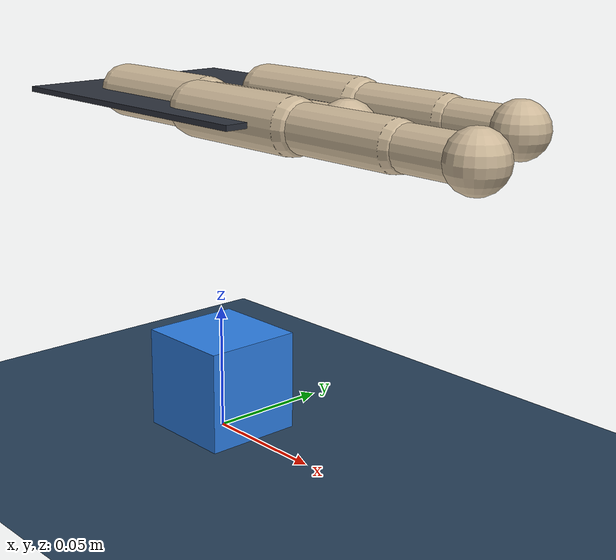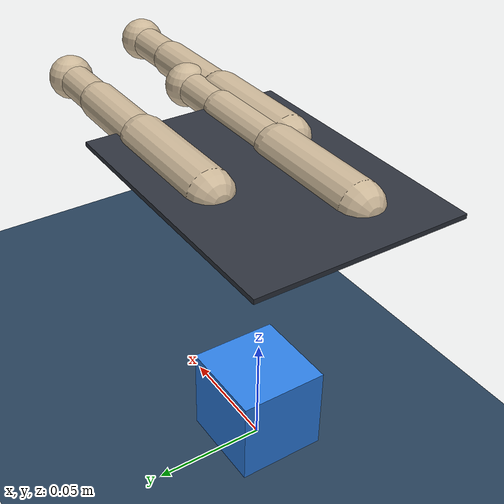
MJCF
<mujoco model="scene_cube_tn0d0041p0d0101p0d0010_ip0d0016n0d0071p0d0013_mp0d0213p0d0036p0d0052">
  <compiler angle="radian" autolimits="true" />
  <option timestep="0.002" gravity="0 0 -9.81" integrator="implicitfast" />
  <visual>
    <headlight ambient=".4 .4 .4" diffuse=".8 .8 .8" specular="0.1 0.1 0.1" />
    <map znear=".01" />
    <quality shadowsize="2048" />
    <global elevation="-15" />
  </visual>
  <default>
    <geom friction="1.8 0.15 0.01" solref="0.006 1" solimp="0.97 0.995 0.0005" />
    <motor ctrlrange="-1 1" ctrllimited="true" />
    <default class="pose">
      <joint damping="2.0" armature="0.01" />
      <position kp="4000" kv="100" forcerange="-1000 1000" />
    </default>
    <default class="ctrl">
      <joint damping="0.5" armature="0.001" />
      <position kp="30" kv="0.5" gear="1" forcerange="-10 10" ctrlrange="-1 1" />
    </default>
  </default>
  <asset>
    <texture type="skybox" builtin="gradient" rgb1="0.3 0.5 0.7" rgb2="0 0 0" width="512" height="3072" />
    <texture type="2d" name="groundplane" builtin="checker" mark="edge" rgb1="0.2 0.3 0.4" rgb2="0.1 0.2 0.3" markrgb="0.8 0.8 0.8" width="300" height="300" />
    <material name="groundplane" texture="groundplane" texuniform="true" texrepeat="5 5" reflectance="0.2" />
    <texture name="grid" type="2d" builtin="checker" rgb1="0.15 0.15 0.15" rgb2="0.25 0.25 0.25" width="256" height="256" />
    <material name="table_mat" texture="grid" texrepeat="3 3" reflectance="0.2" />
    <material name="palm_mat" rgba="0.18 0.2 0.24 1" />
    <material name="finger_mat" rgba="0.8 0.72 0.6 1" />
    <material name="object_mat" rgba="0.18 0.5 0.9 1" />
  </asset>
  <worldbody>
    <light pos="0 0 1.5" dir="0 0 -1" directional="true" diffuse=".6 .6 .6" specular=".2 .2 .2" />
    <light pos="0.5 0.5 1.0" dir="-1 -1 -1" directional="true" diffuse=".4 .4 .4" specular=".1 .1 .1" />
    <geom name="floor" type="plane" size="1.5 1.5 0.1" material="groundplane" />
    <body name="cube" pos="0.000000 0.000000 0.020000">
      <freejoint />
      <geom type="box" size="0.020000 0.020000 0.020000" density="500" material="object_mat" friction="2.4 0.2 0.02" />
    </body>
    <body gravcomp="1" name="palm_pose" pos="0 0 0.134">
      <joint class="pose" name="palm_px" type="slide" axis="1 0 0" range="-0.20 0.20" />
      <joint class="pose" name="palm_py" type="slide" axis="0 1 0" range="-0.20 0.20" />
      <joint class="pose" name="palm_pz" type="slide" axis="0 0 1" range="-0.15 0.35" />
      <joint class="pose" name="palm_rx" type="hinge" axis="1 0 0" range="-1.57 1.57" />
      <joint class="pose" name="palm_ry" type="hinge" axis="0 1 0" range="-1.57 1.57" />
      <joint class="pose" name="palm_rz" type="hinge" axis="0 0 1" range="-3.14 3.14" />
      <geom type="box" size="0.06 0.045 0.001" material="palm_mat" />
      <body name="thumb_mount" pos="-0.034084 -0.017857 0">
        <inertial pos="0 0 0" mass="0.001" diaginertia="1e-6 1e-6 1e-6" />
        <body name="thumb_yaw_frame">
          <inertial pos="0 0 0" mass="0.001" diaginertia="1e-6 1e-6 1e-6" />
          <joint class="ctrl" name="thumb_yaw" type="hinge" axis="1 0 0" range="-1.1 1.1" />
          <body name="thumb_mcp_frame">
            <joint class="ctrl" name="thumb_mcp" type="hinge" axis="0 1 0" range="0 3.14" />
            <geom type="capsule" fromto="0 0 0 0.05 0 0" size="0.010" material="finger_mat" />
            <body name="thumb_len_frame" pos="0.05099 0 0">
              <geom type="capsule" fromto="0 0 0 0.04 0 0" size="0.0085" material="finger_mat" />
              <body name="thumb_pip_frame" pos="0.04 0 0">
                <joint class="ctrl" name="thumb_pip" type="hinge" axis="0 1 0" range="-1.2 0.5" />
                <geom type="capsule" fromto="0 0 0 0.03 0 0" size="0.0075" material="finger_mat" />
                <body name="thumb_tip" pos="0.03 0 0">
                  <geom type="sphere" size="0.010" material="finger_mat" friction="2.4 0.2 0.02" />
                  <geom type="sphere" pos="0 0.004 0" size="0.005" material="finger_mat" friction="2.4 0.2 0.02" />
                  <geom type="sphere" pos="0 -0.004 0" size="0.005" material="finger_mat" friction="2.4 0.2 0.02" />
                </body>
              </body>
            </body>
          </body>
        </body>
      </body>
      <body name="index_mount" pos="0.001599 0.022881 0">
        <inertial pos="0 0 0" mass="0.001" diaginertia="1e-6 1e-6 1e-6" />
        <body name="index_yaw_frame">
          <inertial pos="0 0 0" mass="0.001" diaginertia="1e-6 1e-6 1e-6" />
          <joint class="ctrl" name="index_yaw" type="hinge" axis="1 0 0" range="-1.1 1.1" />
          <body name="index_mcp_frame">
            <joint class="ctrl" name="index_mcp" type="hinge" axis="0 1 0" range="0 2.5" />
            <geom type="capsule" fromto="0 0 0 0.05 0 0" size="0.010" material="finger_mat" />
            <body name="index_len_frame" pos="0.051332 0 0">
              <geom type="capsule" fromto="0 0 0 0.04 0 0" size="0.0085" material="finger_mat" />
              <body name="index_pip_frame" pos="0.04 0 0">
                <joint class="ctrl" name="index_pip" type="hinge" axis="0 1 0" range="-1.2 1.57" />
                <geom type="capsule" fromto="0 0 0 0.03 0 0" size="0.0075" material="finger_mat" />
                <body name="index_tip" pos="0.03 0 0">
                  <geom type="sphere" size="0.010" material="finger_mat" friction="2.4 0.2 0.02" />
                  <geom type="sphere" pos="0 0.004 0" size="0.005" material="finger_mat" friction="2.4 0.2 0.02" />
                  <geom type="sphere" pos="0 -0.004 0" size="0.005" material="finger_mat" friction="2.4 0.2 0.02" />
                </body>
              </body>
            </body>
          </body>
        </body>
      </body>
      <body name="middle_mount" pos="0.021306 -0.026421 0">
        <inertial pos="0 0 0" mass="0.001" diaginertia="1e-6 1e-6 1e-6" />
        <body name="middle_yaw_frame">
          <inertial pos="0 0 0" mass="0.001" diaginertia="1e-6 1e-6 1e-6" />
          <joint class="ctrl" name="middle_yaw" type="hinge" axis="1 0 0" range="-1.1 1.1" />
          <body name="middle_mcp_frame">
            <joint class="ctrl" name="middle_mcp" type="hinge" axis="0 1 0" range="0 2.5" />
            <geom type="capsule" fromto="0 0 0 0.05 0 0" size="0.010" material="finger_mat" />
            <body name="middle_len_frame" pos="0.055187 0 0">
              <geom type="capsule" fromto="0 0 0 0.04 0 0" size="0.0085" material="finger_mat" />
              <body name="middle_pip_frame" pos="0.04 0 0">
                <joint class="ctrl" name="middle_pip" type="hinge" axis="0 1 0" range="-1.2 1.57" />
                <geom type="capsule" fromto="0 0 0 0.03 0 0" size="0.0075" material="finger_mat" />
                <body name="middle_tip" pos="0.03 0 0">
                  <geom type="sphere" size="0.010" material="finger_mat" friction="2.4 0.2 0.02" />
                  <geom type="sphere" pos="0 0.004 0" size="0.005" material="finger_mat" friction="2.4 0.2 0.02" />
                  <geom type="sphere" pos="0 -0.004 0" size="0.005" material="finger_mat" friction="2.4 0.2 0.02" />
                </body>
              </body>
            </body>
          </body>
        </body>
      </body>
    </body>
  </worldbody>
  <actuator>
    <position class="pose" name="a_palm_px" joint="palm_px" ctrlrange="-0.20 0.20" />
    <position class="pose" name="a_palm_py" joint="palm_py" ctrlrange="-0.20 0.20" />
    <position class="pose" name="a_palm_pz" joint="palm_pz" ctrlrange="-0.15 0.35" />
    <position class="pose" name="a_palm_rx" joint="palm_rx" ctrlrange="-1.57 1.57" />
    <position class="pose" name="a_palm_ry" joint="palm_ry" ctrlrange="-1.57 1.57" />
    <position class="pose" name="a_palm_rz" joint="palm_rz" ctrlrange="-3.14 3.14" />
    <position class="ctrl" name="a_thumb_yaw" joint="thumb_yaw" ctrlrange="-1.1 1.1" />
    <position class="ctrl" name="a_thumb_mcp" joint="thumb_mcp" ctrlrange="0 3.14" />
    <position class="ctrl" name="a_thumb_pip" joint="thumb_pip" ctrlrange="-1.2 0.5" />
    <position class="ctrl" name="a_index_yaw" joint="index_yaw" ctrlrange="-1.1 1.1" />
    <position class="ctrl" name="a_index_mcp" joint="index_mcp" ctrlrange="0 2.5" />
    <position class="ctrl" name="a_index_pip" joint="index_pip" ctrlrange="-1.2 1.57" />
    <position class="ctrl" name="a_middle_yaw" joint="middle_yaw" ctrlrange="-1.1 1.1" />
    <position class="ctrl" name="a_middle_mcp" joint="middle_mcp" ctrlrange="0 2.5" />
    <position class="ctrl" name="a_middle_pip" joint="middle_pip" ctrlrange="-1.2 1.57" />
  </actuator>
  <keyframe>
    <key name="open" qpos="&#10;        0 0 0.02 1 0 0 0 0.02 0 0 0 0 0 0 2 -0.707 0 1.25 1 0 1.25 1&#10;      " ctrl="&#10;        0.02 0 0 0 0 0 0 2 -0.707 0 1.25 1 0 1.25 1&#10;      " />
    <key name="foundational" qpos="&#10;        0.01359506611 -0.00706712798 0.02308682168 0.739953845 -0.06814240118 -0.03155361948 0.6684529075 0.02052335863 0.0007667033741 0.0003961458054 0.000115430294 -5.407399963e-05 -2.346123019e-05 -0.1481537601 1.531299552 -0.9469628806 -0.02542961636 1.560524256 0.6738988866 0.3894840175 1.458304248 0.8853232441&#10;      " ctrl="&#10;        0.02 0 0 0 0 0 0.1439691919 1.443316898 -0.9610501064 -0.215976786 1.623557916 0.689442342 0.2859654497 1.510907961 0.913208068&#10;      " />
  </keyframe>
</mujoco>
